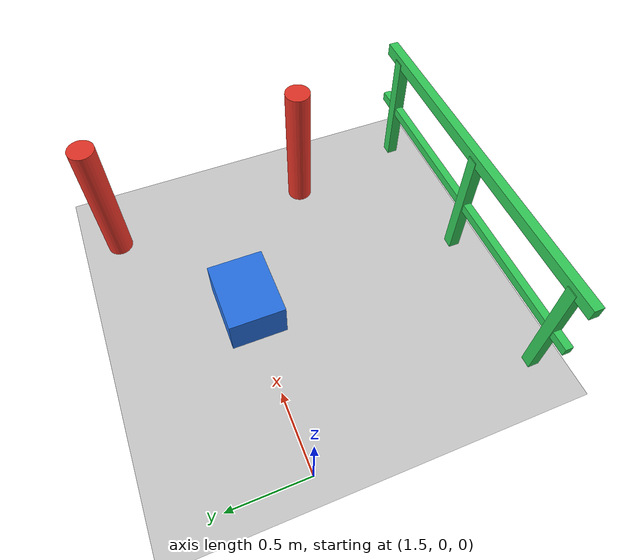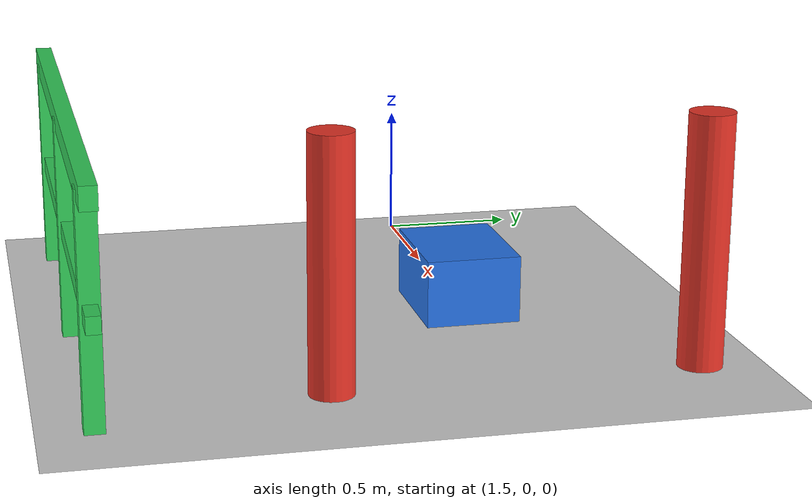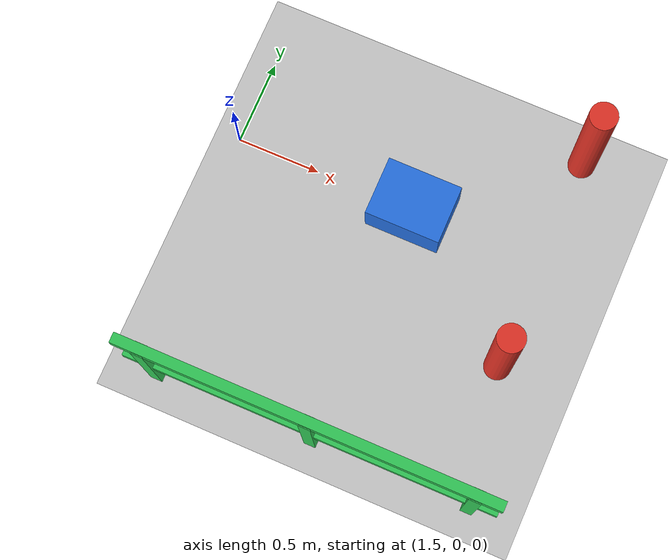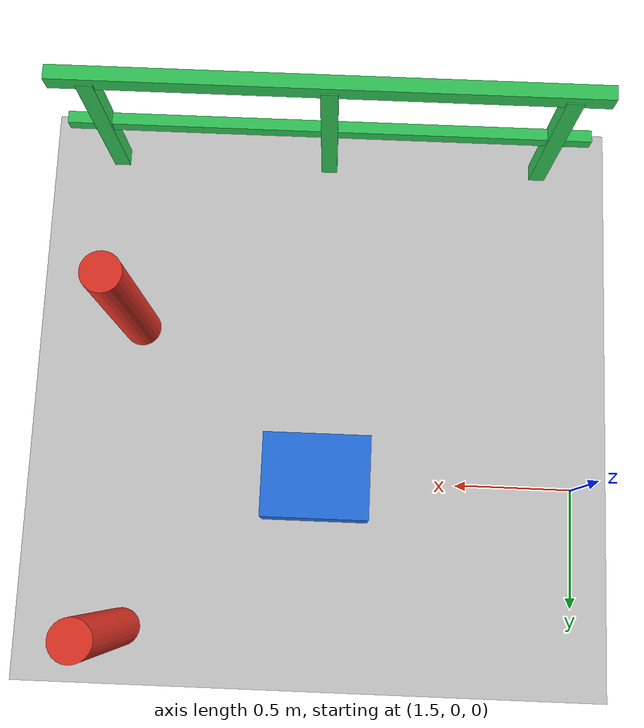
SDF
<?xml version="1.0" ?>

<sdf version="1.5">
    <world name="default">
        <!-- Target real time factor is the product of max_step_size and real_time_update_rate -->
        <!-- Negative real_time_update_rate means that Gazebo will run as fast as possible -->
        <physics type="ode">
            <type>world</type>
            <max_step_size>0.001</max_step_size>
            <real_time_update_rate>1000</real_time_update_rate>
            <iters>500</iters>
        </physics>
        <!-- A global light source -->
        <include>
            <uri>model://sun</uri>
        </include>
        <!-- A ground plane -->
        <include>
            <uri>model://ground_plane</uri>
        </include>

        <model name="front_cylinder_left">
            <static>true</static>
            <pose>3.4 0.65 0.45 0 0 0</pose>
            <link name="link">
                <collision name="collision">
                    <geometry>
                        <cylinder>
                            <radius>0.08</radius>
                            <length>0.9</length>
                        </cylinder>
                    </geometry>
                </collision>
                <visual name="visual">
                    <geometry>
                        <cylinder>
                            <radius>0.08</radius>
                            <length>0.9</length>
                        </cylinder>
                    </geometry>
                    <material>
                        <ambient>0.9 0.2 0.15 1</ambient>
                        <diffuse>0.9 0.2 0.15 1</diffuse>
                    </material>
                </visual>
            </link>
        </model>

        <model name="front_cylinder_right">
            <static>true</static>
            <pose>3.4 -0.65 0.45 0 0 0</pose>
            <link name="link">
                <collision name="collision">
                    <geometry>
                        <cylinder>
                            <radius>0.08</radius>
                            <length>0.9</length>
                        </cylinder>
                    </geometry>
                </collision>
                <visual name="visual">
                    <geometry>
                        <cylinder>
                            <radius>0.08</radius>
                            <length>0.9</length>
                        </cylinder>
                    </geometry>
                    <material>
                        <ambient>0.9 0.2 0.15 1</ambient>
                        <diffuse>0.9 0.2 0.15 1</diffuse>
                    </material>
                </visual>
            </link>
        </model>

        <model name="low_box_obstacle">
            <static>true</static>
            <pose>2.6 0.0 0.125 0 0 0</pose>
            <link name="link">
                <collision name="collision">
                    <geometry>
                        <box>
                            <size>0.45 0.35 0.25</size>
                        </box>
                    </geometry>
                </collision>
                <visual name="visual">
                    <geometry>
                        <box>
                            <size>0.45 0.35 0.25</size>
                        </box>
                    </geometry>
                    <material>
                        <ambient>0.15 0.45 0.9 1</ambient>
                        <diffuse>0.15 0.45 0.9 1</diffuse>
                    </material>
                </visual>
            </link>
        </model>

        <model name="right_side_railing">
            <static>true</static>
            <pose>2.6 -1.45 0.55 0 0 0</pose>
            <link name="link">
                <collision name="rail_top_collision">
                    <pose>0 0 0.25 0 0 0</pose>
                    <geometry>
                        <box>
                            <size>2.2 0.06 0.08</size>
                        </box>
                    </geometry>
                </collision>
                <visual name="rail_top_visual">
                    <pose>0 0 0.25 0 0 0</pose>
                    <geometry>
                        <box>
                            <size>2.2 0.06 0.08</size>
                        </box>
                    </geometry>
                    <material>
                        <ambient>0.2 0.8 0.35 1</ambient>
                        <diffuse>0.2 0.8 0.35 1</diffuse>
                    </material>
                </visual>
                <collision name="rail_mid_collision">
                    <pose>0 0 -0.15 0 0 0</pose>
                    <geometry>
                        <box>
                            <size>2.2 0.05 0.06</size>
                        </box>
                    </geometry>
                </collision>
                <visual name="rail_mid_visual">
                    <pose>0 0 -0.15 0 0 0</pose>
                    <geometry>
                        <box>
                            <size>2.2 0.05 0.06</size>
                        </box>
                    </geometry>
                    <material>
                        <ambient>0.2 0.8 0.35 1</ambient>
                        <diffuse>0.2 0.8 0.35 1</diffuse>
                    </material>
                </visual>
                <collision name="post_a_collision">
                    <pose>-0.95 0 -0.2 0 0 0</pose>
                    <geometry>
                        <box>
                            <size>0.07 0.07 0.9</size>
                        </box>
                    </geometry>
                </collision>
                <visual name="post_a_visual">
                    <pose>-0.95 0 -0.2 0 0 0</pose>
                    <geometry>
                        <box>
                            <size>0.07 0.07 0.9</size>
                        </box>
                    </geometry>
                    <material>
                        <ambient>0.2 0.8 0.35 1</ambient>
                        <diffuse>0.2 0.8 0.35 1</diffuse>
                    </material>
                </visual>
                <collision name="post_b_collision">
                    <pose>0 0 -0.2 0 0 0</pose>
                    <geometry>
                        <box>
                            <size>0.07 0.07 0.9</size>
                        </box>
                    </geometry>
                </collision>
                <visual name="post_b_visual">
                    <pose>0 0 -0.2 0 0 0</pose>
                    <geometry>
                        <box>
                            <size>0.07 0.07 0.9</size>
                        </box>
                    </geometry>
                    <material>
                        <ambient>0.2 0.8 0.35 1</ambient>
                        <diffuse>0.2 0.8 0.35 1</diffuse>
                    </material>
                </visual>
                <collision name="post_c_collision">
                    <pose>0.95 0 -0.2 0 0 0</pose>
                    <geometry>
                        <box>
                            <size>0.07 0.07 0.9</size>
                        </box>
                    </geometry>
                </collision>
                <visual name="post_c_visual">
                    <pose>0.95 0 -0.2 0 0 0</pose>
                    <geometry>
                        <box>
                            <size>0.07 0.07 0.9</size>
                        </box>
                    </geometry>
                    <material>
                        <ambient>0.2 0.8 0.35 1</ambient>
                        <diffuse>0.2 0.8 0.35 1</diffuse>
                    </material>
                </visual>
            </link>
        </model>
    </world>
</sdf>
